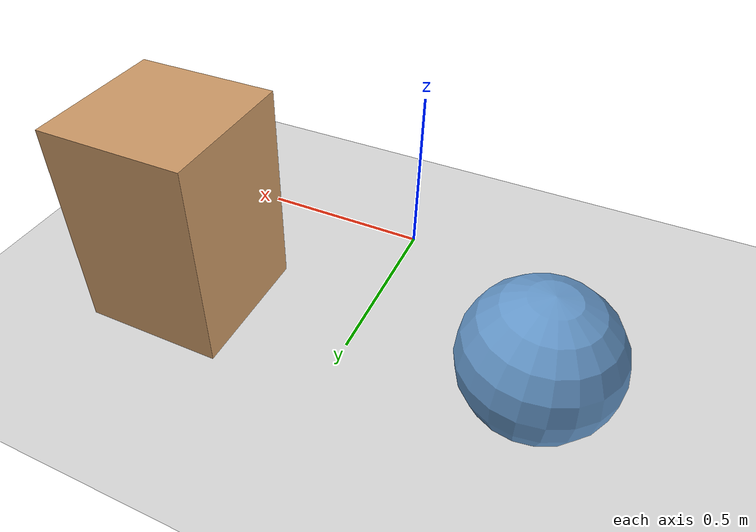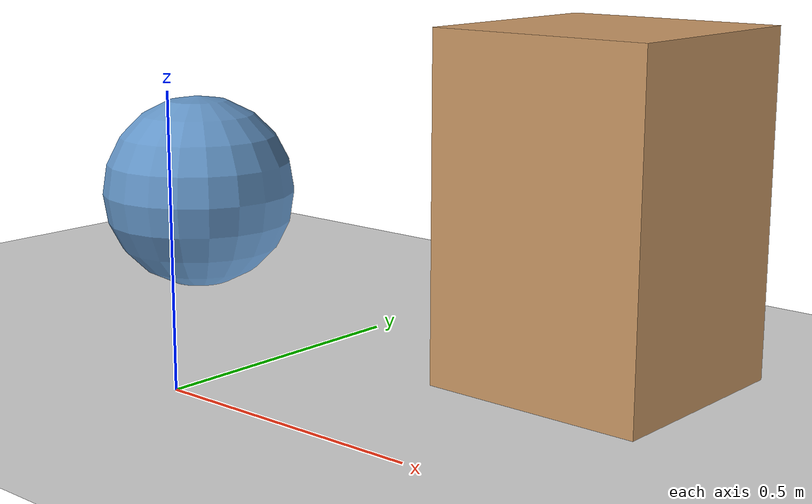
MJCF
<mujoco model="floor and objects">

    <visual>
        <headlight diffuse="0.6 0.6 0.6" ambient="0.3 0.3 0.3" specular="0 0 0" />
        <rgba haze="0.15 0.25 0.35 1" />
    </visual>

    <asset>
        <!-- Sky -->
        <texture type="skybox" builtin="gradient" rgb1="0.3 0.5 0.7" rgb2="0 0 0" width="512"
            height="3072" />
        <!-- Ground -->
        <texture type="2d" name="groundplane" builtin="checker" mark="edge" rgb1="0.9 0.9 0.9"
            rgb2="0.8 0.8 0.8"
            markrgb="0.8 0.8 0.8" width="1000" height="1000" />
        <material name="groundplane" texture="groundplane" texuniform="true" texrepeat="1 1"
            reflectance="0.1" />
    </asset>

    <worldbody>
        <light pos="1 -1 1.5" dir="-1 1 -1" diffuse="0.5 0.5 0.5" directional="true" />
        <geom name="floor" group="1" size="0 0 0.05" type="plane" material="groundplane" />

        <!-- Box (like a table) -->
        <body name="box" pos="0.5 0.5 0.3">
            <geom type="box" size="0.2 0.2 0.3" rgba="0.8 0.6 0.4 1"/>
        </body>

        <!-- Sphere (like a ball) -->
        <body name="sphere" pos="-0.5 0.5 0.2">
            <geom type="sphere" size="0.2" rgba="0.4 0.6 0.8 1"/>
        </body>
    </worldbody>

</mujoco>
